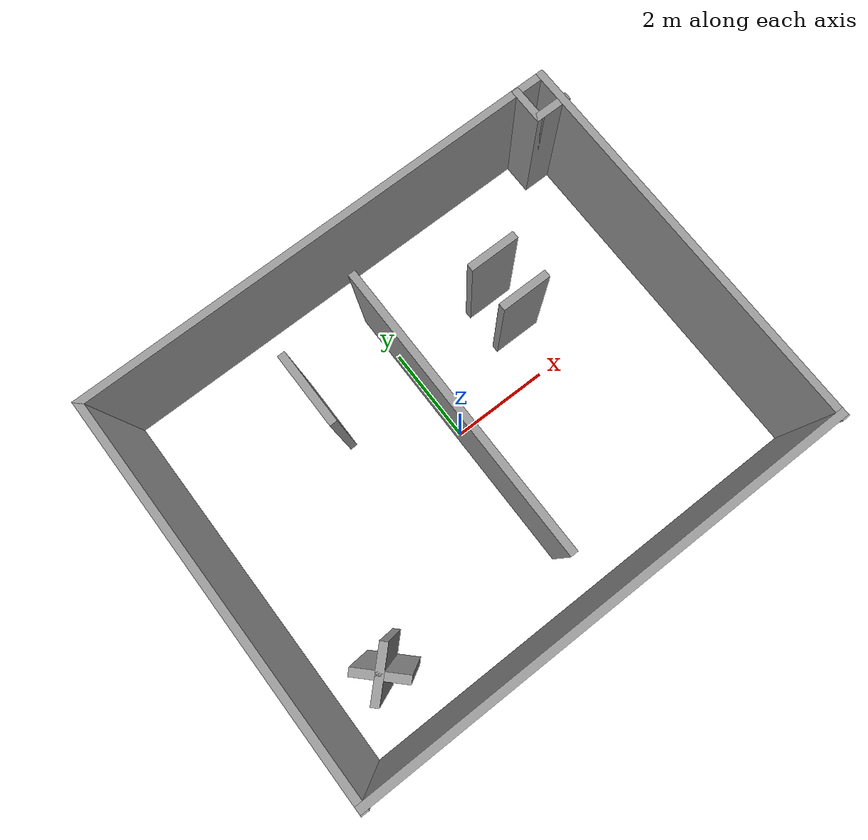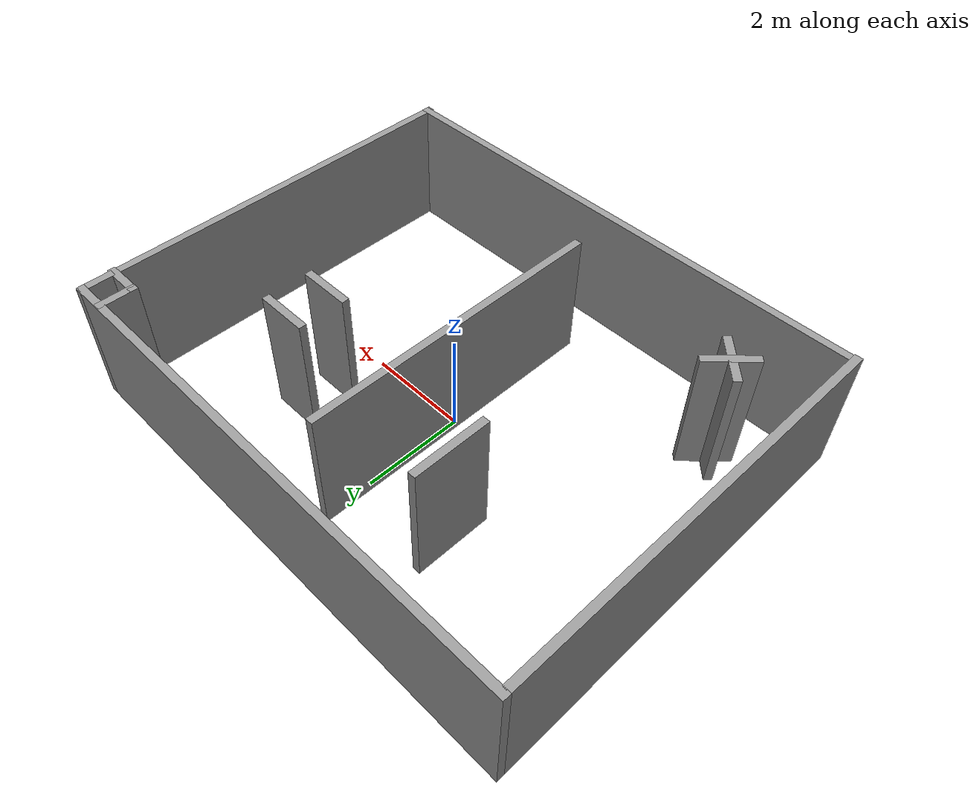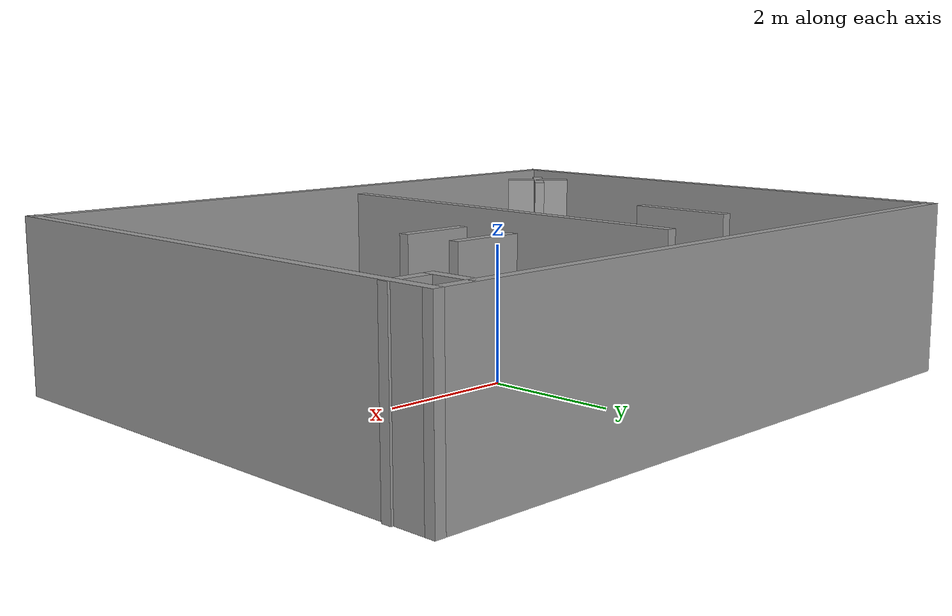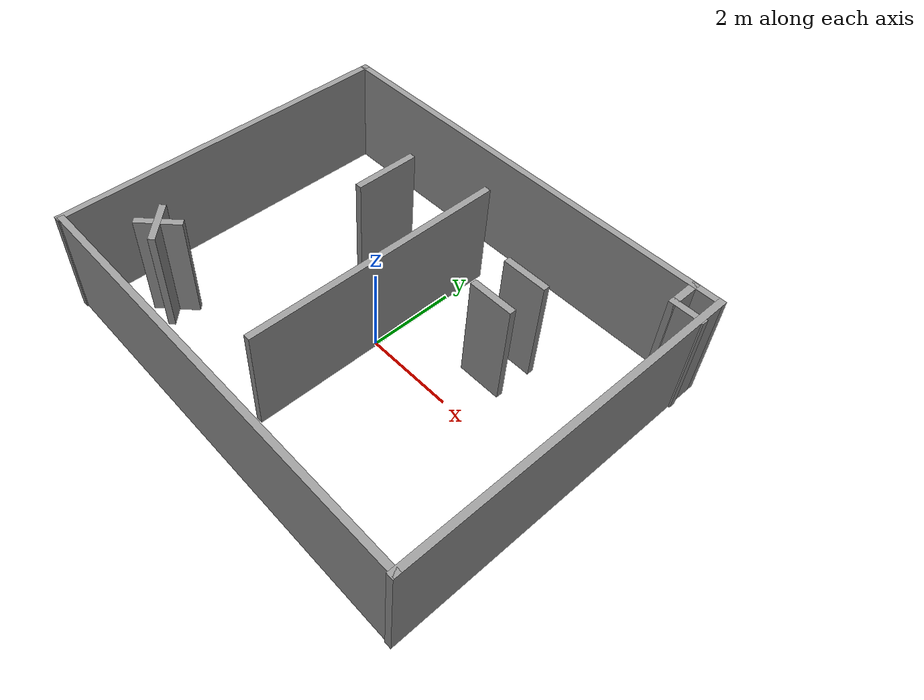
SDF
<?xml version='1.0'?>
<sdf version='1.6'>
  <model name='sim_world_3'>
    <link name='Wall_0'>
      <pose frame=''>-0.016842 -3.925 0 0 -0 0</pose>
      <self_collide>0</self_collide>
      <enable_wind>0</enable_wind>
      <kinematic>0</kinematic>
      <visual name='Wall_0_Visual'>
        <pose frame=''>0 0 1.25 0 -0 0</pose>
        <geometry>
          <box>
            <size>10 0.15 2.5</size>
          </box>
        </geometry>
        <material>
          <script>
            <uri>file://media/materials/scripts/gazebo.material</uri>
            <name>Gazebo/Grey</name>
          </script>
          <ambient>1 1 1 1</ambient>
        </material>
        <meta>
          <layer>0</layer>
        </meta>
        <transparency>0</transparency>
        <cast_shadows>1</cast_shadows>
      </visual>
      <collision name='Wall_0_Collision'>
        <laser_retro>0</laser_retro>
        <max_contacts>10</max_contacts>
        <pose frame=''>0 0 1.25 0 -0 0</pose>
        <geometry>
          <box>
            <size>10 0.15 2.5</size>
          </box>
        </geometry>
        <surface>
          <friction>
            <ode>
              <mu>1</mu>
              <mu2>1</mu2>
              <fdir1>0 0 0</fdir1>
              <slip1>0</slip1>
              <slip2>0</slip2>
            </ode>
            <torsional>
              <coefficient>1</coefficient>
              <patch_radius>0</patch_radius>
              <surface_radius>0</surface_radius>
              <use_patch_radius>1</use_patch_radius>
              <ode>
                <slip>0</slip>
              </ode>
            </torsional>
          </friction>
          <bounce>
            <restitution_coefficient>0</restitution_coefficient>
            <threshold>1e+06</threshold>
          </bounce>
          <contact>
            <collide_without_contact>0</collide_without_contact>
            <collide_without_contact_bitmask>1</collide_without_contact_bitmask>
            <collide_bitmask>1</collide_bitmask>
            <ode>
              <soft_cfm>0</soft_cfm>
              <soft_erp>0.2</soft_erp>
              <kp>1e+13</kp>
              <kd>1</kd>
              <max_vel>0.01</max_vel>
              <min_depth>0</min_depth>
            </ode>
            <bullet>
              <split_impulse>1</split_impulse>
              <split_impulse_penetration_threshold>-0.01</split_impulse_penetration_threshold>
              <soft_cfm>0</soft_cfm>
              <soft_erp>0.2</soft_erp>
              <kp>1e+13</kp>
              <kd>1</kd>
            </bullet>
          </contact>
        </surface>
      </collision>
    </link>
    <link name='Wall_1'>
      <pose frame=''>4.90816 0 0 0 -0 1.5708</pose>
      <self_collide>0</self_collide>
      <enable_wind>0</enable_wind>
      <kinematic>0</kinematic>
      <visual name='Wall_1_Visual'>
        <pose frame=''>0 0 1.25 0 -0 0</pose>
        <geometry>
          <box>
            <size>8.0532 0.15 2.5</size>
          </box>
        </geometry>
        <material>
          <script>
            <uri>file://media/materials/scripts/gazebo.material</uri>
            <name>Gazebo/Grey</name>
          </script>
          <ambient>1 1 1 1</ambient>
        </material>
        <meta>
          <layer>0</layer>
        </meta>
        <transparency>0</transparency>
        <cast_shadows>1</cast_shadows>
      </visual>
      <collision name='Wall_1_Collision'>
        <laser_retro>0</laser_retro>
        <max_contacts>10</max_contacts>
        <pose frame=''>0 0 1.25 0 -0 0</pose>
        <geometry>
          <box>
            <size>8.0532 0.15 2.5</size>
          </box>
        </geometry>
        <surface>
          <friction>
            <ode>
              <mu>1</mu>
              <mu2>1</mu2>
              <fdir1>0 0 0</fdir1>
              <slip1>0</slip1>
              <slip2>0</slip2>
            </ode>
            <torsional>
              <coefficient>1</coefficient>
              <patch_radius>0</patch_radius>
              <surface_radius>0</surface_radius>
              <use_patch_radius>1</use_patch_radius>
              <ode>
                <slip>0</slip>
              </ode>
            </torsional>
          </friction>
          <bounce>
            <restitution_coefficient>0</restitution_coefficient>
            <threshold>1e+06</threshold>
          </bounce>
          <contact>
            <collide_without_contact>0</collide_without_contact>
            <collide_without_contact_bitmask>1</collide_without_contact_bitmask>
            <collide_bitmask>1</collide_bitmask>
            <ode>
              <soft_cfm>0</soft_cfm>
              <soft_erp>0.2</soft_erp>
              <kp>1e+13</kp>
              <kd>1</kd>
              <max_vel>0.01</max_vel>
              <min_depth>0</min_depth>
            </ode>
            <bullet>
              <split_impulse>1</split_impulse>
              <split_impulse_penetration_threshold>-0.01</split_impulse_penetration_threshold>
              <soft_cfm>0</soft_cfm>
              <soft_erp>0.2</soft_erp>
              <kp>1e+13</kp>
              <kd>1</kd>
            </bullet>
          </contact>
        </surface>
      </collision>
    </link>
    <link name='Wall_10'>
      <pose frame=''>-3.57656 -2.54651 0 0 -0 0.785398</pose>
      <self_collide>0</self_collide>
      <enable_wind>0</enable_wind>
      <kinematic>0</kinematic>
      <visual name='Wall_10_Visual'>
        <pose frame=''>0 0 1.25 0 -0 0</pose>
        <geometry>
          <box>
            <size>1 0.15 2.5</size>
          </box>
        </geometry>
        <material>
          <script>
            <uri>file://media/materials/scripts/gazebo.material</uri>
            <name>Gazebo/Grey</name>
          </script>
          <ambient>1 1 1 1</ambient>
        </material>
        <meta>
          <layer>0</layer>
        </meta>
        <transparency>0</transparency>
        <cast_shadows>1</cast_shadows>
      </visual>
      <collision name='Wall_10_Collision'>
        <laser_retro>0</laser_retro>
        <max_contacts>10</max_contacts>
        <pose frame=''>0 0 1.25 0 -0 0</pose>
        <geometry>
          <box>
            <size>1 0.15 2.5</size>
          </box>
        </geometry>
        <surface>
          <friction>
            <ode>
              <mu>1</mu>
              <mu2>1</mu2>
              <fdir1>0 0 0</fdir1>
              <slip1>0</slip1>
              <slip2>0</slip2>
            </ode>
            <torsional>
              <coefficient>1</coefficient>
              <patch_radius>0</patch_radius>
              <surface_radius>0</surface_radius>
              <use_patch_radius>1</use_patch_radius>
              <ode>
                <slip>0</slip>
              </ode>
            </torsional>
          </friction>
          <bounce>
            <restitution_coefficient>0</restitution_coefficient>
            <threshold>1e+06</threshold>
          </bounce>
          <contact>
            <collide_without_contact>0</collide_without_contact>
            <collide_without_contact_bitmask>1</collide_without_contact_bitmask>
            <collide_bitmask>1</collide_bitmask>
            <ode>
              <soft_cfm>0</soft_cfm>
              <soft_erp>0.2</soft_erp>
              <kp>1e+13</kp>
              <kd>1</kd>
              <max_vel>0.01</max_vel>
              <min_depth>0</min_depth>
            </ode>
            <bullet>
              <split_impulse>1</split_impulse>
              <split_impulse_penetration_threshold>-0.01</split_impulse_penetration_threshold>
              <soft_cfm>0</soft_cfm>
              <soft_erp>0.2</soft_erp>
              <kp>1e+13</kp>
              <kd>1</kd>
            </bullet>
          </contact>
        </surface>
      </collision>
    </link>
    <link name='Wall_12'>
      <pose frame=''>-3.58163 -2.57159 0 0 0 -0.785398</pose>
      <self_collide>0</self_collide>
      <enable_wind>0</enable_wind>
      <kinematic>0</kinematic>
      <visual name='Wall_12_Visual'>
        <pose frame=''>0 0 1.25 0 -0 0</pose>
        <geometry>
          <box>
            <size>1 0.15 2.5</size>
          </box>
        </geometry>
        <material>
          <script>
            <uri>file://media/materials/scripts/gazebo.material</uri>
            <name>Gazebo/Grey</name>
          </script>
          <ambient>1 1 1 1</ambient>
        </material>
        <meta>
          <layer>0</layer>
        </meta>
        <transparency>0</transparency>
        <cast_shadows>1</cast_shadows>
      </visual>
      <collision name='Wall_12_Collision'>
        <laser_retro>0</laser_retro>
        <max_contacts>10</max_contacts>
        <pose frame=''>0 0 1.25 0 -0 0</pose>
        <geometry>
          <box>
            <size>1 0.15 2.5</size>
          </box>
        </geometry>
        <surface>
          <friction>
            <ode>
              <mu>1</mu>
              <mu2>1</mu2>
              <fdir1>0 0 0</fdir1>
              <slip1>0</slip1>
              <slip2>0</slip2>
            </ode>
            <torsional>
              <coefficient>1</coefficient>
              <patch_radius>0</patch_radius>
              <surface_radius>0</surface_radius>
              <use_patch_radius>1</use_patch_radius>
              <ode>
                <slip>0</slip>
              </ode>
            </torsional>
          </friction>
          <bounce>
            <restitution_coefficient>0</restitution_coefficient>
            <threshold>1e+06</threshold>
          </bounce>
          <contact>
            <collide_without_contact>0</collide_without_contact>
            <collide_without_contact_bitmask>1</collide_without_contact_bitmask>
            <collide_bitmask>1</collide_bitmask>
            <ode>
              <soft_cfm>0</soft_cfm>
              <soft_erp>0.2</soft_erp>
              <kp>1e+13</kp>
              <kd>1</kd>
              <max_vel>0.01</max_vel>
              <min_depth>0</min_depth>
            </ode>
            <bullet>
              <split_impulse>1</split_impulse>
              <split_impulse_penetration_threshold>-0.01</split_impulse_penetration_threshold>
              <soft_cfm>0</soft_cfm>
              <soft_erp>0.2</soft_erp>
              <kp>1e+13</kp>
              <kd>1</kd>
            </bullet>
          </contact>
        </surface>
      </collision>
    </link>
    <link name='Wall_14'>
      <pose frame=''>4.34184 3.63889 0 0 0 -1.5708</pose>
      <self_collide>0</self_collide>
      <enable_wind>0</enable_wind>
      <kinematic>0</kinematic>
      <visual name='Wall_14_Visual'>
        <pose frame=''>0 0 1.25 0 -0 0</pose>
        <geometry>
          <box>
            <size>0.75 0.15 2.5</size>
          </box>
        </geometry>
        <material>
          <script>
            <uri>file://media/materials/scripts/gazebo.material</uri>
            <name>Gazebo/Grey</name>
          </script>
          <ambient>1 1 1 1</ambient>
        </material>
        <meta>
          <layer>0</layer>
        </meta>
        <transparency>0</transparency>
        <cast_shadows>1</cast_shadows>
      </visual>
      <collision name='Wall_14_Collision'>
        <laser_retro>0</laser_retro>
        <max_contacts>10</max_contacts>
        <pose frame=''>0 0 1.25 0 -0 0</pose>
        <geometry>
          <box>
            <size>0.75 0.15 2.5</size>
          </box>
        </geometry>
        <surface>
          <friction>
            <ode>
              <mu>1</mu>
              <mu2>1</mu2>
              <fdir1>0 0 0</fdir1>
              <slip1>0</slip1>
              <slip2>0</slip2>
            </ode>
            <torsional>
              <coefficient>1</coefficient>
              <patch_radius>0</patch_radius>
              <surface_radius>0</surface_radius>
              <use_patch_radius>1</use_patch_radius>
              <ode>
                <slip>0</slip>
              </ode>
            </torsional>
          </friction>
          <bounce>
            <restitution_coefficient>0</restitution_coefficient>
            <threshold>1e+06</threshold>
          </bounce>
          <contact>
            <collide_without_contact>0</collide_without_contact>
            <collide_without_contact_bitmask>1</collide_without_contact_bitmask>
            <collide_bitmask>1</collide_bitmask>
            <ode>
              <soft_cfm>0</soft_cfm>
              <soft_erp>0.2</soft_erp>
              <kp>1e+13</kp>
              <kd>1</kd>
              <max_vel>0.01</max_vel>
              <min_depth>0</min_depth>
            </ode>
            <bullet>
              <split_impulse>1</split_impulse>
              <split_impulse_penetration_threshold>-0.01</split_impulse_penetration_threshold>
              <soft_cfm>0</soft_cfm>
              <soft_erp>0.2</soft_erp>
              <kp>1e+13</kp>
              <kd>1</kd>
            </bullet>
          </contact>
        </surface>
      </collision>
    </link>
    <link name='Wall_15'>
      <pose frame=''>4.64184 3.33889 0 0 -0 0</pose>
      <self_collide>0</self_collide>
      <enable_wind>0</enable_wind>
      <kinematic>0</kinematic>
      <visual name='Wall_15_Visual'>
        <pose frame=''>0 0 1.25 0 -0 0</pose>
        <geometry>
          <box>
            <size>0.75 0.15 2.5</size>
          </box>
        </geometry>
        <material>
          <script>
            <uri>file://media/materials/scripts/gazebo.material</uri>
            <name>Gazebo/Grey</name>
          </script>
          <ambient>1 1 1 1</ambient>
        </material>
        <meta>
          <layer>0</layer>
        </meta>
        <transparency>0</transparency>
        <cast_shadows>1</cast_shadows>
      </visual>
      <collision name='Wall_15_Collision'>
        <laser_retro>0</laser_retro>
        <max_contacts>10</max_contacts>
        <pose frame=''>0 0 1.25 0 -0 0</pose>
        <geometry>
          <box>
            <size>0.75 0.15 2.5</size>
          </box>
        </geometry>
        <surface>
          <friction>
            <ode>
              <mu>1</mu>
              <mu2>1</mu2>
              <fdir1>0 0 0</fdir1>
              <slip1>0</slip1>
              <slip2>0</slip2>
            </ode>
            <torsional>
              <coefficient>1</coefficient>
              <patch_radius>0</patch_radius>
              <surface_radius>0</surface_radius>
              <use_patch_radius>1</use_patch_radius>
              <ode>
                <slip>0</slip>
              </ode>
            </torsional>
          </friction>
          <bounce>
            <restitution_coefficient>0</restitution_coefficient>
            <threshold>1e+06</threshold>
          </bounce>
          <contact>
            <collide_without_contact>0</collide_without_contact>
            <collide_without_contact_bitmask>1</collide_without_contact_bitmask>
            <collide_bitmask>1</collide_bitmask>
            <ode>
              <soft_cfm>0</soft_cfm>
              <soft_erp>0.2</soft_erp>
              <kp>1e+13</kp>
              <kd>1</kd>
              <max_vel>0.01</max_vel>
              <min_depth>0</min_depth>
            </ode>
            <bullet>
              <split_impulse>1</split_impulse>
              <split_impulse_penetration_threshold>-0.01</split_impulse_penetration_threshold>
              <soft_cfm>0</soft_cfm>
              <soft_erp>0.2</soft_erp>
              <kp>1e+13</kp>
              <kd>1</kd>
            </bullet>
          </contact>
        </surface>
      </collision>
    </link>
    <link name='Wall_17'>
      <pose frame=''>-1.80727 1.833 0 0 0 -1.5708</pose>
      <self_collide>0</self_collide>
      <enable_wind>0</enable_wind>
      <kinematic>0</kinematic>
      <visual name='Wall_17_Visual'>
        <pose frame=''>0 0 1.25 0 -0 0</pose>
        <geometry>
          <box>
            <size>1.5 0.15 2.5</size>
          </box>
        </geometry>
        <material>
          <script>
            <uri>file://media/materials/scripts/gazebo.material</uri>
            <name>Gazebo/Grey</name>
          </script>
          <ambient>1 1 1 1</ambient>
        </material>
        <meta>
          <layer>0</layer>
        </meta>
        <transparency>0</transparency>
        <cast_shadows>1</cast_shadows>
      </visual>
      <collision name='Wall_17_Collision'>
        <laser_retro>0</laser_retro>
        <max_contacts>10</max_contacts>
        <pose frame=''>0 0 1.25 0 -0 0</pose>
        <geometry>
          <box>
            <size>1.5 0.15 2.5</size>
          </box>
        </geometry>
        <surface>
          <friction>
            <ode>
              <mu>1</mu>
              <mu2>1</mu2>
              <fdir1>0 0 0</fdir1>
              <slip1>0</slip1>
              <slip2>0</slip2>
            </ode>
            <torsional>
              <coefficient>1</coefficient>
              <patch_radius>0</patch_radius>
              <surface_radius>0</surface_radius>
              <use_patch_radius>1</use_patch_radius>
              <ode>
                <slip>0</slip>
              </ode>
            </torsional>
          </friction>
          <bounce>
            <restitution_coefficient>0</restitution_coefficient>
            <threshold>1e+06</threshold>
          </bounce>
          <contact>
            <collide_without_contact>0</collide_without_contact>
            <collide_without_contact_bitmask>1</collide_without_contact_bitmask>
            <collide_bitmask>1</collide_bitmask>
            <ode>
              <soft_cfm>0</soft_cfm>
              <soft_erp>0.2</soft_erp>
              <kp>1e+13</kp>
              <kd>1</kd>
              <max_vel>0.01</max_vel>
              <min_depth>0</min_depth>
            </ode>
            <bullet>
              <split_impulse>1</split_impulse>
              <split_impulse_penetration_threshold>-0.01</split_impulse_penetration_threshold>
              <soft_cfm>0</soft_cfm>
              <soft_erp>0.2</soft_erp>
              <kp>1e+13</kp>
              <kd>1</kd>
            </bullet>
          </contact>
        </surface>
      </collision>
    </link>
    <link name='Wall_2'>
      <pose frame=''>-0.016842 3.9516 0 0 -0 3.14159</pose>
      <self_collide>0</self_collide>
      <enable_wind>0</enable_wind>
      <kinematic>0</kinematic>
      <visual name='Wall_2_Visual'>
        <pose frame=''>0 0 1.25 0 -0 0</pose>
        <geometry>
          <box>
            <size>10 0.15 2.5</size>
          </box>
        </geometry>
        <material>
          <script>
            <uri>file://media/materials/scripts/gazebo.material</uri>
            <name>Gazebo/Grey</name>
          </script>
          <ambient>1 1 1 1</ambient>
        </material>
        <meta>
          <layer>0</layer>
        </meta>
        <transparency>0</transparency>
        <cast_shadows>1</cast_shadows>
      </visual>
      <collision name='Wall_2_Collision'>
        <laser_retro>0</laser_retro>
        <max_contacts>10</max_contacts>
        <pose frame=''>0 0 1.25 0 -0 0</pose>
        <geometry>
          <box>
            <size>10 0.15 2.5</size>
          </box>
        </geometry>
        <surface>
          <friction>
            <ode>
              <mu>1</mu>
              <mu2>1</mu2>
              <fdir1>0 0 0</fdir1>
              <slip1>0</slip1>
              <slip2>0</slip2>
            </ode>
            <torsional>
              <coefficient>1</coefficient>
              <patch_radius>0</patch_radius>
              <surface_radius>0</surface_radius>
              <use_patch_radius>1</use_patch_radius>
              <ode>
                <slip>0</slip>
              </ode>
            </torsional>
          </friction>
          <bounce>
            <restitution_coefficient>0</restitution_coefficient>
            <threshold>1e+06</threshold>
          </bounce>
          <contact>
            <collide_without_contact>0</collide_without_contact>
            <collide_without_contact_bitmask>1</collide_without_contact_bitmask>
            <collide_bitmask>1</collide_bitmask>
            <ode>
              <soft_cfm>0</soft_cfm>
              <soft_erp>0.2</soft_erp>
              <kp>1e+13</kp>
              <kd>1</kd>
              <max_vel>0.01</max_vel>
              <min_depth>0</min_depth>
            </ode>
            <bullet>
              <split_impulse>1</split_impulse>
              <split_impulse_penetration_threshold>-0.01</split_impulse_penetration_threshold>
              <soft_cfm>0</soft_cfm>
              <soft_erp>0.2</soft_erp>
              <kp>1e+13</kp>
              <kd>1</kd>
            </bullet>
          </contact>
        </surface>
      </collision>
    </link>
    <link name='Wall_22'>
      <pose frame=''>2.12453 1.8423 0 0 -0 0</pose>
      <self_collide>0</self_collide>
      <enable_wind>0</enable_wind>
      <kinematic>0</kinematic>
      <visual name='Wall_22_Visual'>
        <pose frame=''>0 0 1.25 0 -0 0</pose>
        <geometry>
          <box>
            <size>1 0.15 2.5</size>
          </box>
        </geometry>
        <material>
          <script>
            <uri>file://media/materials/scripts/gazebo.material</uri>
            <name>Gazebo/Grey</name>
          </script>
          <ambient>1 1 1 1</ambient>
        </material>
        <meta>
          <layer>0</layer>
        </meta>
        <transparency>0</transparency>
        <cast_shadows>1</cast_shadows>
      </visual>
      <collision name='Wall_22_Collision'>
        <laser_retro>0</laser_retro>
        <max_contacts>10</max_contacts>
        <pose frame=''>0 0 1.25 0 -0 0</pose>
        <geometry>
          <box>
            <size>1 0.15 2.5</size>
          </box>
        </geometry>
        <surface>
          <friction>
            <ode>
              <mu>1</mu>
              <mu2>1</mu2>
              <fdir1>0 0 0</fdir1>
              <slip1>0</slip1>
              <slip2>0</slip2>
            </ode>
            <torsional>
              <coefficient>1</coefficient>
              <patch_radius>0</patch_radius>
              <surface_radius>0</surface_radius>
              <use_patch_radius>1</use_patch_radius>
              <ode>
                <slip>0</slip>
              </ode>
            </torsional>
          </friction>
          <bounce>
            <restitution_coefficient>0</restitution_coefficient>
            <threshold>1e+06</threshold>
          </bounce>
          <contact>
            <collide_without_contact>0</collide_without_contact>
            <collide_without_contact_bitmask>1</collide_without_contact_bitmask>
            <collide_bitmask>1</collide_bitmask>
            <ode>
              <soft_cfm>0</soft_cfm>
              <soft_erp>0.2</soft_erp>
              <kp>1e+13</kp>
              <kd>1</kd>
              <max_vel>0.01</max_vel>
              <min_depth>0</min_depth>
            </ode>
            <bullet>
              <split_impulse>1</split_impulse>
              <split_impulse_penetration_threshold>-0.01</split_impulse_penetration_threshold>
              <soft_cfm>0</soft_cfm>
              <soft_erp>0.2</soft_erp>
              <kp>1e+13</kp>
              <kd>1</kd>
            </bullet>
          </contact>
        </surface>
      </collision>
    </link>
    <link name='Wall_24'>
      <pose frame=''>2.11637 0.956027 0 0 -0 0</pose>
      <self_collide>0</self_collide>
      <enable_wind>0</enable_wind>
      <kinematic>0</kinematic>
      <visual name='Wall_24_Visual'>
        <pose frame=''>0 0 1.25 0 -0 0</pose>
        <geometry>
          <box>
            <size>1 0.15 2.5</size>
          </box>
        </geometry>
        <material>
          <script>
            <uri>file://media/materials/scripts/gazebo.material</uri>
            <name>Gazebo/Grey</name>
          </script>
          <ambient>1 1 1 1</ambient>
        </material>
        <meta>
          <layer>0</layer>
        </meta>
        <transparency>0</transparency>
        <cast_shadows>1</cast_shadows>
      </visual>
      <collision name='Wall_24_Collision'>
        <laser_retro>0</laser_retro>
        <max_contacts>10</max_contacts>
        <pose frame=''>0 0 1.25 0 -0 0</pose>
        <geometry>
          <box>
            <size>1 0.15 2.5</size>
          </box>
        </geometry>
        <surface>
          <friction>
            <ode>
              <mu>1</mu>
              <mu2>1</mu2>
              <fdir1>0 0 0</fdir1>
              <slip1>0</slip1>
              <slip2>0</slip2>
            </ode>
            <torsional>
              <coefficient>1</coefficient>
              <patch_radius>0</patch_radius>
              <surface_radius>0</surface_radius>
              <use_patch_radius>1</use_patch_radius>
              <ode>
                <slip>0</slip>
              </ode>
            </torsional>
          </friction>
          <bounce>
            <restitution_coefficient>0</restitution_coefficient>
            <threshold>1e+06</threshold>
          </bounce>
          <contact>
            <collide_without_contact>0</collide_without_contact>
            <collide_without_contact_bitmask>1</collide_without_contact_bitmask>
            <collide_bitmask>1</collide_bitmask>
            <ode>
              <soft_cfm>0</soft_cfm>
              <soft_erp>0.2</soft_erp>
              <kp>1e+13</kp>
              <kd>1</kd>
              <max_vel>0.01</max_vel>
              <min_depth>0</min_depth>
            </ode>
            <bullet>
              <split_impulse>1</split_impulse>
              <split_impulse_penetration_threshold>-0.01</split_impulse_penetration_threshold>
              <soft_cfm>0</soft_cfm>
              <soft_erp>0.2</soft_erp>
              <kp>1e+13</kp>
              <kd>1</kd>
            </bullet>
          </contact>
        </surface>
      </collision>
    </link>
    <link name='Wall_3'>
      <pose frame=''>-4.94184 0 0 0 0 -1.5708</pose>
      <self_collide>0</self_collide>
      <enable_wind>0</enable_wind>
      <kinematic>0</kinematic>
      <visual name='Wall_3_Visual'>
        <pose frame=''>0 0 1.25 0 -0 0</pose>
        <geometry>
          <box>
            <size>8.0532 0.15 2.5</size>
          </box>
        </geometry>
        <material>
          <script>
            <uri>file://media/materials/scripts/gazebo.material</uri>
            <name>Gazebo/Grey</name>
          </script>
          <ambient>1 1 1 1</ambient>
        </material>
        <meta>
          <layer>0</layer>
        </meta>
        <transparency>0</transparency>
        <cast_shadows>1</cast_shadows>
      </visual>
      <collision name='Wall_3_Collision'>
        <laser_retro>0</laser_retro>
        <max_contacts>10</max_contacts>
        <pose frame=''>0 0 1.25 0 -0 0</pose>
        <geometry>
          <box>
            <size>8.0532 0.15 2.5</size>
          </box>
        </geometry>
        <surface>
          <friction>
            <ode>
              <mu>1</mu>
              <mu2>1</mu2>
              <fdir1>0 0 0</fdir1>
              <slip1>0</slip1>
              <slip2>0</slip2>
            </ode>
            <torsional>
              <coefficient>1</coefficient>
              <patch_radius>0</patch_radius>
              <surface_radius>0</surface_radius>
              <use_patch_radius>1</use_patch_radius>
              <ode>
                <slip>0</slip>
              </ode>
            </torsional>
          </friction>
          <bounce>
            <restitution_coefficient>0</restitution_coefficient>
            <threshold>1e+06</threshold>
          </bounce>
          <contact>
            <collide_without_contact>0</collide_without_contact>
            <collide_without_contact_bitmask>1</collide_without_contact_bitmask>
            <collide_bitmask>1</collide_bitmask>
            <ode>
              <soft_cfm>0</soft_cfm>
              <soft_erp>0.2</soft_erp>
              <kp>1e+13</kp>
              <kd>1</kd>
              <max_vel>0.01</max_vel>
              <min_depth>0</min_depth>
            </ode>
            <bullet>
              <split_impulse>1</split_impulse>
              <split_impulse_penetration_threshold>-0.01</split_impulse_penetration_threshold>
              <soft_cfm>0</soft_cfm>
              <soft_erp>0.2</soft_erp>
              <kp>1e+13</kp>
              <kd>1</kd>
            </bullet>
          </contact>
        </surface>
      </collision>
    </link>
    <link name='Wall_5'>
      <pose frame=''>-0.024447 0.014305 0 0 0 -1.5708</pose>
      <self_collide>0</self_collide>
      <enable_wind>0</enable_wind>
      <kinematic>0</kinematic>
      <visual name='Wall_5_Visual'>
        <pose frame=''>0 0 1.25 0 -0 0</pose>
        <geometry>
          <box>
            <size>6 0.15 2.5</size>
          </box>
        </geometry>
        <material>
          <script>
            <uri>file://media/materials/scripts/gazebo.material</uri>
            <name>Gazebo/Grey</name>
          </script>
          <ambient>1 1 1 1</ambient>
        </material>
        <meta>
          <layer>0</layer>
        </meta>
        <transparency>0</transparency>
        <cast_shadows>1</cast_shadows>
      </visual>
      <collision name='Wall_5_Collision'>
        <laser_retro>0</laser_retro>
        <max_contacts>10</max_contacts>
        <pose frame=''>0 0 1.25 0 -0 0</pose>
        <geometry>
          <box>
            <size>6 0.15 2.5</size>
          </box>
        </geometry>
        <surface>
          <friction>
            <ode>
              <mu>1</mu>
              <mu2>1</mu2>
              <fdir1>0 0 0</fdir1>
              <slip1>0</slip1>
              <slip2>0</slip2>
            </ode>
            <torsional>
              <coefficient>1</coefficient>
              <patch_radius>0</patch_radius>
              <surface_radius>0</surface_radius>
              <use_patch_radius>1</use_patch_radius>
              <ode>
                <slip>0</slip>
              </ode>
            </torsional>
          </friction>
          <bounce>
            <restitution_coefficient>0</restitution_coefficient>
            <threshold>1e+06</threshold>
          </bounce>
          <contact>
            <collide_without_contact>0</collide_without_contact>
            <collide_without_contact_bitmask>1</collide_without_contact_bitmask>
            <collide_bitmask>1</collide_bitmask>
            <ode>
              <soft_cfm>0</soft_cfm>
              <soft_erp>0.2</soft_erp>
              <kp>1e+13</kp>
              <kd>1</kd>
              <max_vel>0.01</max_vel>
              <min_depth>0</min_depth>
            </ode>
            <bullet>
              <split_impulse>1</split_impulse>
              <split_impulse_penetration_threshold>-0.01</split_impulse_penetration_threshold>
              <soft_cfm>0</soft_cfm>
              <soft_erp>0.2</soft_erp>
              <kp>1e+13</kp>
              <kd>1</kd>
            </bullet>
          </contact>
        </surface>
      </collision>
    </link>
    <static>1</static>
    <allow_auto_disable>1</allow_auto_disable>
  </model>
</sdf>
